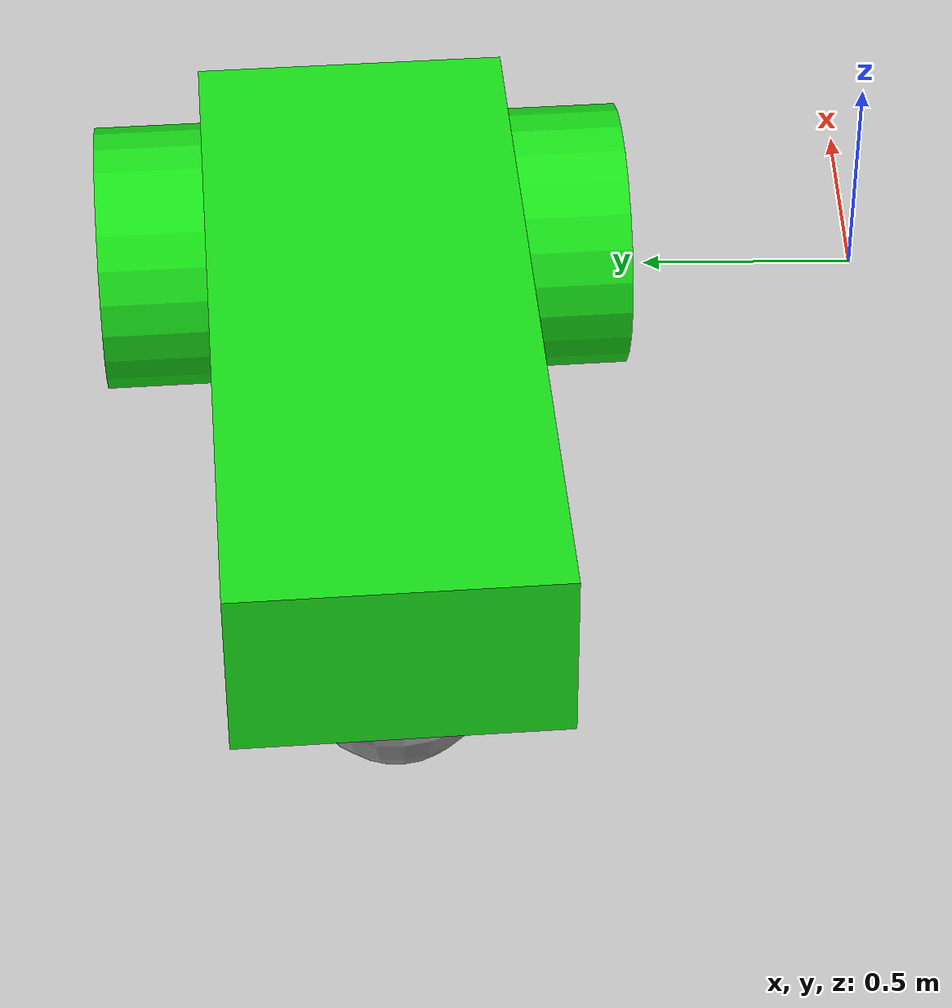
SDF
<sdf version="1.6">
 <world name="default">
  <model name="ground_plane">
   <static>1</static>
   <link name="link">
    <collision name="collision">
     <geometry><plane><normal>0 0 1</normal><size>100 100</size></plane></geometry>
     <surface><friction><ode><mu>100</mu><mu2>50</mu2></ode></friction></surface>
    </collision>
    <visual name="visual">
     <cast_shadows>0</cast_shadows>
     <geometry><plane><normal>0 0 1</normal><size>100 100</size></plane></geometry>
     <material>
      <script><uri>file://media/materials/scripts/gazebo.material</uri><name>Gazebo/Grey</name></script>
     </material>
    </visual>
   </link>
  </model>
  <model name="Vehicle">
   <link name="link_0_clone">
    <pose>0 -0 0.4 0 -0 0</pose>
    <inertial>
     <mass>8.4072</mass>
     <inertia><ixx>0.444437</ixx><ixy>0</ixy><ixz>0</ixz><iyy>1.39419</iyy><iyz>0</iyz><izz>1.60581</izz></inertia>
    </inertial>
    <visual name="visual">
     <geometry><box><size>1.8 0.7 0.4</size></box></geometry>
     <material>
      <lighting>1</lighting>
      <script><uri>file://media/materials/scripts/gazebo.material</uri><name>Gazebo/Grey</name></script>
      <shader type="pixel"><normal_map>__default__</normal_map></shader>
      <ambient>0.3 0.3 0.3 1</ambient>
      <diffuse>0.1 0.9 0.1 1</diffuse>
      <specular>0.01 0.01 0.01 1</specular>
      <emissive>0 0 0 1</emissive>
     </material>
    </visual>
    <collision name="collision">
     <geometry><box><size>1.8 0.7 0.4</size></box></geometry>
     <surface>
      <friction>
       <ode><mu>1</mu><mu2>1</mu2><fdir1>0 0 0</fdir1><slip1>0</slip1><slip2>0</slip2></ode>
       <torsional>
        <coefficient>1</coefficient>
        <patch_radius>0</patch_radius>
        <surface_radius>0</surface_radius>
        <use_patch_radius>1</use_patch_radius>
        <ode><slip>0</slip></ode>
       </torsional>
      </friction>
      <bounce><restitution_coefficient>0</restitution_coefficient><threshold>1e+06</threshold></bounce>
      <contact>
       <collide_without_contact>0</collide_without_contact>
       <collide_without_contact_bitmask>1</collide_without_contact_bitmask>
       <collide_bitmask>1</collide_bitmask>
       <ode>
        <soft_cfm>0</soft_cfm>
        <soft_erp>0.2</soft_erp>
        <kp>1e+13</kp>
        <kd>1</kd>
        <max_vel>0.01</max_vel>
        <min_depth>0</min_depth>
       </ode>
       <bullet>
        <split_impulse>1</split_impulse>
        <split_impulse_penetration_threshold>-0.01</split_impulse_penetration_threshold>
        <soft_cfm>0</soft_cfm>
        <soft_erp>0.2</soft_erp>
        <kp>1e+13</kp>
        <kd>1</kd>
       </bullet>
      </contact>
     </surface>
    </collision>
   </link>
   <link name="link_0">
    <pose>0.6 0.467205 0.3 1.5707 0.03 0</pose>
    <inertial>
     <mass>1</mass>
     <inertia><ixx>0.145833</ixx><ixy>0</ixy><ixz>0</ixz><iyy>0.145833</iyy><iyz>0</iyz><izz>0.125</izz></inertia>
    </inertial>
    <visual name="visual">
     <geometry><cylinder><radius>0.3</radius><length>0.25</length></cylinder></geometry>
     <material>
      <lighting>1</lighting>
      <script><uri>file://media/materials/scripts/gazebo.material</uri><name>Gazebo/Grey</name></script>
      <shader type="pixel"><normal_map>__default__</normal_map></shader>
      <ambient>0.3 0.3 0.3 1</ambient>
      <diffuse>0.1 0.9 0.1 1</diffuse>
      <specular>0.01 0.01 0.01 1</specular>
      <emissive>0 0 0 1</emissive>
     </material>
    </visual>
    <collision name="collision">
     <geometry><cylinder><radius>0.3</radius><length>0.25</length></cylinder></geometry>
     <surface>
      <friction>
       <ode><mu>1</mu><mu2>1</mu2><fdir1>0 0 0</fdir1><slip1>0</slip1><slip2>0</slip2></ode>
       <torsional>
        <coefficient>1</coefficient>
        <patch_radius>0</patch_radius>
        <surface_radius>0</surface_radius>
        <use_patch_radius>1</use_patch_radius>
        <ode><slip>0</slip></ode>
       </torsional>
      </friction>
      <bounce><restitution_coefficient>0</restitution_coefficient><threshold>1e+06</threshold></bounce>
      <contact>
       <collide_without_contact>0</collide_without_contact>
       <collide_without_contact_bitmask>1</collide_without_contact_bitmask>
       <collide_bitmask>1</collide_bitmask>
       <ode>
        <soft_cfm>0</soft_cfm>
        <soft_erp>0.2</soft_erp>
        <kp>1e+13</kp>
        <kd>1</kd>
        <max_vel>0.01</max_vel>
        <min_depth>0</min_depth>
       </ode>
       <bullet>
        <split_impulse>1</split_impulse>
        <split_impulse_penetration_threshold>-0.01</split_impulse_penetration_threshold>
        <soft_cfm>0</soft_cfm>
        <soft_erp>0.2</soft_erp>
        <kp>1e+13</kp>
        <kd>1</kd>
       </bullet>
      </contact>
     </surface>
    </collision>
   </link>
   <link name="link_0_0">
    <pose>-0.690774 0.00168 0.2 -0.031665 0.139995 0.005148</pose>
    <inertial>
     <mass>1</mass>
     <inertia><ixx>0.1</ixx><ixy>0</ixy><ixz>0</ixz><iyy>0.1</iyy><iyz>0</iyz><izz>0.1</izz></inertia>
    </inertial>
    <visual name="visual">
     <geometry><sphere><radius>0.2</radius></sphere></geometry>
     <material>
      <lighting>1</lighting>
      <script><uri>file://media/materials/scripts/gazebo.material</uri><name>Gazebo/Grey</name></script>
      <shader type="pixel"><normal_map>__default__</normal_map></shader>
      <ambient>0.3 0.3 0.3 1</ambient>
      <diffuse>0.7 0.7 0.7 1</diffuse>
      <specular>0.01 0.01 0.01 1</specular>
      <emissive>0 0 0 1</emissive>
     </material>
    </visual>
    <collision name="collision">
     <geometry><sphere><radius>0.2</radius></sphere></geometry>
     <surface>
      <friction>
       <ode><mu>1</mu><mu2>1</mu2><fdir1>0 0 0</fdir1><slip1>0</slip1><slip2>0</slip2></ode>
       <torsional>
        <coefficient>1</coefficient>
        <patch_radius>0</patch_radius>
        <surface_radius>0</surface_radius>
        <use_patch_radius>1</use_patch_radius>
        <ode><slip>0</slip></ode>
       </torsional>
      </friction>
      <bounce><restitution_coefficient>0</restitution_coefficient><threshold>1e+06</threshold></bounce>
      <contact>
       <collide_without_contact>0</collide_without_contact>
       <collide_without_contact_bitmask>1</collide_without_contact_bitmask>
       <collide_bitmask>1</collide_bitmask>
       <ode>
        <soft_cfm>0</soft_cfm>
        <soft_erp>0.2</soft_erp>
        <kp>1e+13</kp>
        <kd>1</kd>
        <max_vel>0.01</max_vel>
        <min_depth>0</min_depth>
       </ode>
       <bullet>
        <split_impulse>1</split_impulse>
        <split_impulse_penetration_threshold>-0.01</split_impulse_penetration_threshold>
        <soft_cfm>0</soft_cfm>
        <soft_erp>0.2</soft_erp>
        <kp>1e+13</kp>
        <kd>1</kd>
       </bullet>
      </contact>
     </surface>
    </collision>
   </link>
   <link name="link_0_clone_0">
    <pose>0.6 -0.475029 0.3 1.5707 -0 0</pose>
    <inertial>
     <mass>1</mass>
     <inertia><ixx>0.145833</ixx><ixy>0</ixy><ixz>0</ixz><iyy>0.145833</iyy><iyz>0</iyz><izz>0.125</izz></inertia>
    </inertial>
    <visual name="visual">
     <geometry><cylinder><radius>0.3</radius><length>0.25</length></cylinder></geometry>
     <material>
      <lighting>1</lighting>
      <script><uri>file://media/materials/scripts/gazebo.material</uri><name>Gazebo/Grey</name></script>
      <shader type="pixel"><normal_map>__default__</normal_map></shader>
      <ambient>0.3 0.3 0.3 1</ambient>
      <diffuse>0.1 0.9 0.1 1</diffuse>
      <specular>0.01 0.01 0.01 1</specular>
      <emissive>0 0 0 1</emissive>
     </material>
    </visual>
    <collision name="collision">
     <geometry><cylinder><radius>0.3</radius><length>0.25</length></cylinder></geometry>
     <surface>
      <friction>
       <ode><mu>1</mu><mu2>1</mu2><fdir1>0 0 0</fdir1><slip1>0</slip1><slip2>0</slip2></ode>
       <torsional>
        <coefficient>1</coefficient>
        <patch_radius>0</patch_radius>
        <surface_radius>0</surface_radius>
        <use_patch_radius>1</use_patch_radius>
        <ode><slip>0</slip></ode>
       </torsional>
      </friction>
      <bounce><restitution_coefficient>0</restitution_coefficient><threshold>1e+06</threshold></bounce>
      <contact>
       <collide_without_contact>0</collide_without_contact>
       <collide_without_contact_bitmask>1</collide_without_contact_bitmask>
       <collide_bitmask>1</collide_bitmask>
       <ode>
        <soft_cfm>0</soft_cfm>
        <soft_erp>0.2</soft_erp>
        <kp>1e+13</kp>
        <kd>1</kd>
        <max_vel>0.01</max_vel>
        <min_depth>0</min_depth>
       </ode>
       <bullet>
        <split_impulse>1</split_impulse>
        <split_impulse_penetration_threshold>-0.01</split_impulse_penetration_threshold>
        <soft_cfm>0</soft_cfm>
        <soft_erp>0.2</soft_erp>
        <kp>1e+13</kp>
        <kd>1</kd>
       </bullet>
      </contact>
     </surface>
    </collision>
   </link>
   <joint name="link_0_clone_JOINT_0_0" type="ball">
    <parent>link_0_clone</parent>
    <child>link_0_0</child>
    <physics>
     <ode><limit><cfm>0</cfm><erp>0.2</erp></limit><suspension><cfm>0</cfm><erp>0.2</erp></suspension></ode>
    </physics>
   </joint>
   <joint name="link_0_clone_JOINT_0" type="revolute">
    <parent>link_0_clone</parent>
    <child>link_0</child>
    <axis>
     <xyz>0 0 1</xyz>
     <use_parent_model_frame>0</use_parent_model_frame>
     <limit>
      <lower>-1.79769e+308</lower>
      <upper>1.79769e+308</upper>
      <effort>-1</effort>
      <velocity>-1</velocity>
     </limit>
     <dynamics>
      <spring_reference>0</spring_reference>
      <spring_stiffness>0</spring_stiffness>
      <damping>0</damping>
      <friction>0</friction>
     </dynamics>
    </axis>
    <physics>
     <ode><limit><cfm>0</cfm><erp>0.2</erp></limit><suspension><cfm>0</cfm><erp>0.2</erp></suspension></ode>
    </physics>
   </joint>
   <joint name="link_0_clone_JOINT_1" type="revolute">
    <parent>link_0_clone</parent>
    <child>link_0_clone_0</child>
    <axis>
     <xyz>0 0 1</xyz>
     <use_parent_model_frame>0</use_parent_model_frame>
     <limit>
      <lower>-1.79769e+308</lower>
      <upper>1.79769e+308</upper>
      <effort>-1</effort>
      <velocity>-1</velocity>
     </limit>
     <dynamics>
      <spring_reference>0</spring_reference>
      <spring_stiffness>0</spring_stiffness>
      <damping>0</damping>
      <friction>0</friction>
     </dynamics>
    </axis>
    <physics>
     <ode><limit><cfm>0</cfm><erp>0.2</erp></limit><suspension><cfm>0</cfm><erp>0.2</erp></suspension></ode>
    </physics>
   </joint>
   <static>0</static>
   <pose>-0.908996 1.13974 4e-06 7e-06 -6e-06 0.067282</pose>
  </model>
 </world>
</sdf>
